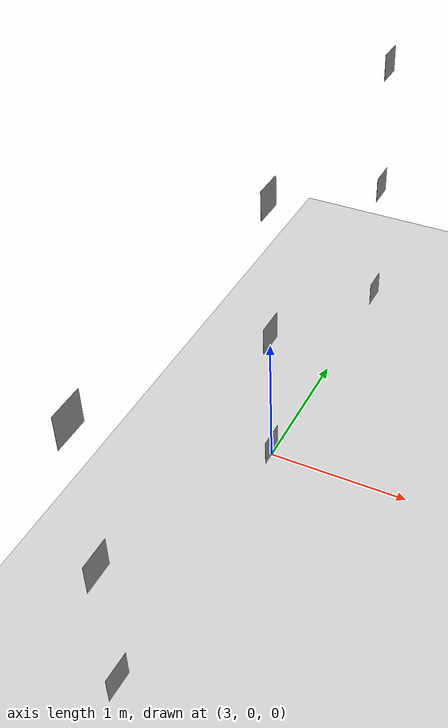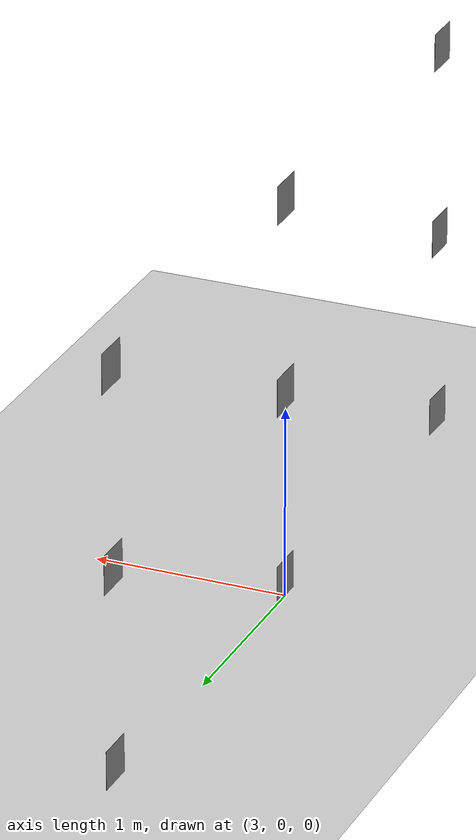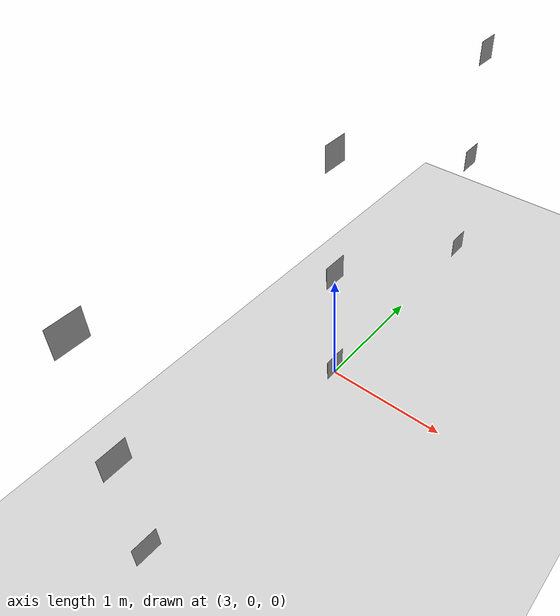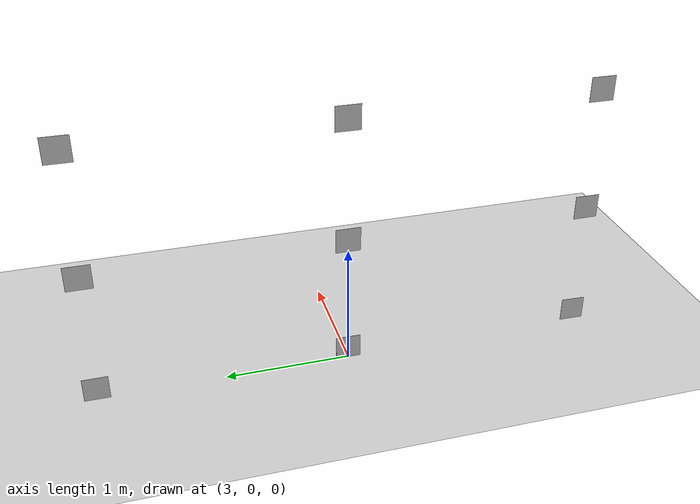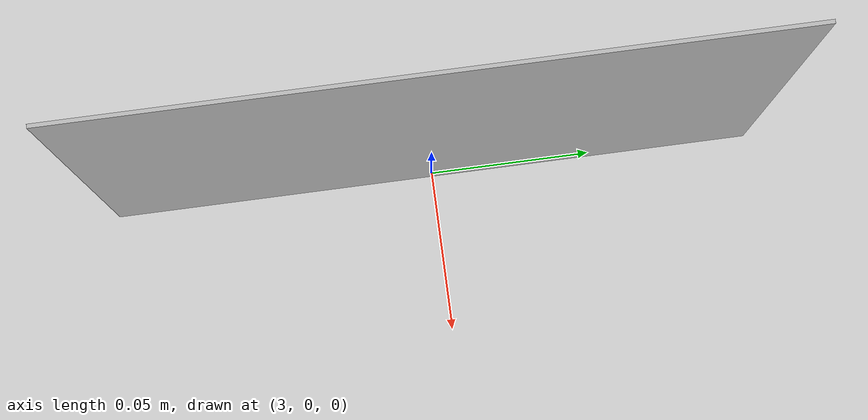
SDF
<sdf version="1.6">
 <world name="default">
  <light name="sun" type="directional">
   <pose>0 0 10 0 -0 0</pose>
   <diffuse>0.8 0.8 0.8 1</diffuse>
   <specular>0.1 0.1 0.1 1</specular>
   <attenuation>
    <range>1000</range>
    <constant>0.9</constant>
    <linear>0.01</linear>
    <quadratic>0.001</quadratic>
   </attenuation>
   <direction>-0.5 0.5 -1</direction>
  </light>
  <model name="ground_plane">
   <static>1</static>
   <link name="link">
    <collision name="collision">
     <geometry><plane><normal>0 0 1</normal><size>100 100</size></plane></geometry>
     <surface><friction><ode><mu>100</mu><mu2>50</mu2></ode></friction></surface>
    </collision>
    <visual name="visual">
     <cast_shadows>0</cast_shadows>
     <geometry><plane><normal>0 0 1</normal><size>100 100</size></plane></geometry>
     <material>
      <script><uri>file://media/materials/scripts/gazebo.material</uri><name>Gazebo/Grey</name></script>
     </material>
    </visual>
   </link>
  </model>
  <gravity>0 0 -9.8</gravity>
  <magnetic_field>6e-06 2.3e-05 -4.2e-05</magnetic_field>
  <atmosphere type="adiabatic"/>
  <physics name="default_physics" default="0" type="ode">
   <max_step_size>0.001</max_step_size>
   <real_time_factor>1</real_time_factor>
   <real_time_update_rate>1000</real_time_update_rate>
  </physics>
  <scene><ambient>0.4 0.4 0.4 1</ambient><background>0.7 0.7 0.7 1</background><shadows>1</shadows></scene>
  <spherical_coordinates>
   <surface_model>EARTH_WGS84</surface_model>
   <latitude_deg>0</latitude_deg>
   <longitude_deg>0</longitude_deg>
   <elevation>0</elevation>
   <heading_deg>0</heading_deg>
  </spherical_coordinates>
  <model name="Ar_alvar_tag0">
   <static>1</static>
   <link name="link">
    <collision name="collision">
     <geometry><mesh><uri>model://ar_alvar_tag0/meshes/artag.dae</uri><scale>1 1 1</scale></mesh></geometry>
    </collision>
    <visual name="visual">
     <geometry><mesh><uri>model://ar_alvar_tag0/meshes/artag.dae</uri><scale>1 1 1</scale></mesh></geometry>
    </visual>
   </link>
   <pose>3 0 0.1 0 -0 3.14</pose>
  </model>
  <model name="Ar_alvar_tag1">
   <static>1</static>
   <link name="link">
    <collision name="collision">
     <geometry><mesh><uri>model://ar_alvar_tag1/meshes/artag.dae</uri><scale>1 1 1</scale></mesh></geometry>
    </collision>
    <visual name="visual">
     <geometry><mesh><uri>model://ar_alvar_tag1/meshes/artag.dae</uri><scale>1 1 1</scale></mesh></geometry>
    </visual>
   </link>
   <pose>3 2 0.1 0 -0 3.14</pose>
  </model>
  <model name="Ar_alvar_tag2">
   <static>1</static>
   <link name="link">
    <collision name="collision">
     <geometry><mesh><uri>model://ar_alvar_tag2/meshes/artag.dae</uri><scale>1 1 1</scale></mesh></geometry>
    </collision>
    <visual name="visual">
     <geometry><mesh><uri>model://ar_alvar_tag2/meshes/artag.dae</uri><scale>1 1 1</scale></mesh></geometry>
    </visual>
   </link>
   <pose>3 -2 0.11 0 -0 3.114</pose>
  </model>
  <model name="Ar_alvar_tag3">
   <static>1</static>
   <link name="link">
    <collision name="collision">
     <geometry><mesh><uri>model://ar_alvar_tag3/meshes/artag.dae</uri><scale>1 1 1</scale></mesh></geometry>
    </collision>
    <visual name="visual">
     <geometry><mesh><uri>model://ar_alvar_tag3/meshes/artag.dae</uri><scale>1 1 1</scale></mesh></geometry>
    </visual>
   </link>
   <pose>3 0 1.1 0 -0 3.14</pose>
  </model>
  <model name="Ar_alvar_tag4">
   <static>1</static>
   <link name="link">
    <collision name="collision">
     <geometry><mesh><uri>model://ar_alvar_tag4/meshes/artag.dae</uri><scale>1 1 1</scale></mesh></geometry>
    </collision>
    <visual name="visual">
     <geometry><mesh><uri>model://ar_alvar_tag4/meshes/artag.dae</uri><scale>1 1 1</scale></mesh></geometry>
    </visual>
   </link>
   <pose>3 2 1.1 0 -0 3.14</pose>
  </model>
  <model name="Ar_alvar_tag5">
   <static>1</static>
   <link name="link">
    <collision name="collision">
     <geometry><mesh><uri>model://ar_alvar_tag5/meshes/artag.dae</uri><scale>1 1 1</scale></mesh></geometry>
    </collision>
    <visual name="visual">
     <geometry><mesh><uri>model://ar_alvar_tag5/meshes/artag.dae</uri><scale>1 1 1</scale></mesh></geometry>
    </visual>
   </link>
   <pose>3 -2 1.1 0 -0 3.14</pose>
  </model>
  <model name="Ar_alvar_tag6">
   <static>1</static>
   <link name="link">
    <collision name="collision">
     <geometry><mesh><uri>model://ar_alvar_tag6/meshes/artag.dae</uri><scale>1 1 1</scale></mesh></geometry>
    </collision>
    <visual name="visual">
     <geometry><mesh><uri>model://ar_alvar_tag6/meshes/artag.dae</uri><scale>1 1 1</scale></mesh></geometry>
    </visual>
   </link>
   <pose>3 0 2.1 0 -0 3.14</pose>
  </model>
  <model name="Ar_alvar_tag7">
   <static>1</static>
   <link name="link">
    <collision name="collision">
     <geometry><mesh><uri>model://ar_alvar_tag7/meshes/artag.dae</uri><scale>1 1 1</scale></mesh></geometry>
    </collision>
    <visual name="visual">
     <geometry><mesh><uri>model://ar_alvar_tag7/meshes/artag.dae</uri><scale>1 1 1</scale></mesh></geometry>
    </visual>
   </link>
   <pose>3 2 2.1 0 -0 3.14</pose>
  </model>
  <model name="Ar_alvar_tag8">
   <static>1</static>
   <link name="link">
    <collision name="collision">
     <geometry><mesh><uri>model://ar_alvar_tag8/meshes/artag.dae</uri><scale>1 1 1</scale></mesh></geometry>
    </collision>
    <visual name="visual">
     <geometry><mesh><uri>model://ar_alvar_tag8/meshes/artag.dae</uri><scale>1 1 1</scale></mesh></geometry>
    </visual>
   </link>
   <pose>3 -2 2.11 0 -0 3.14</pose>
  </model>
 </world>
</sdf>
